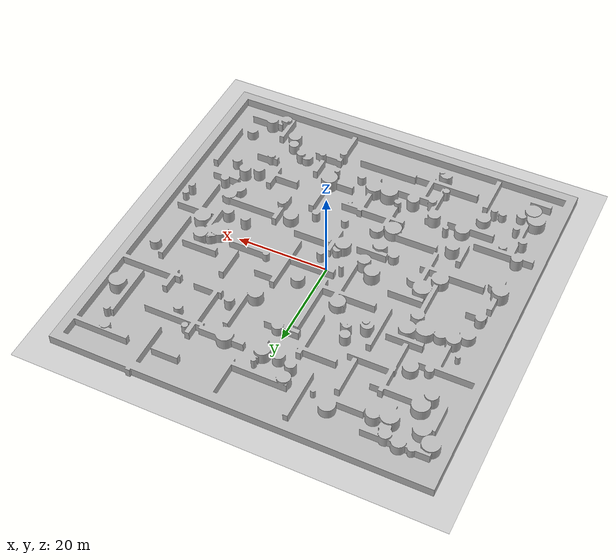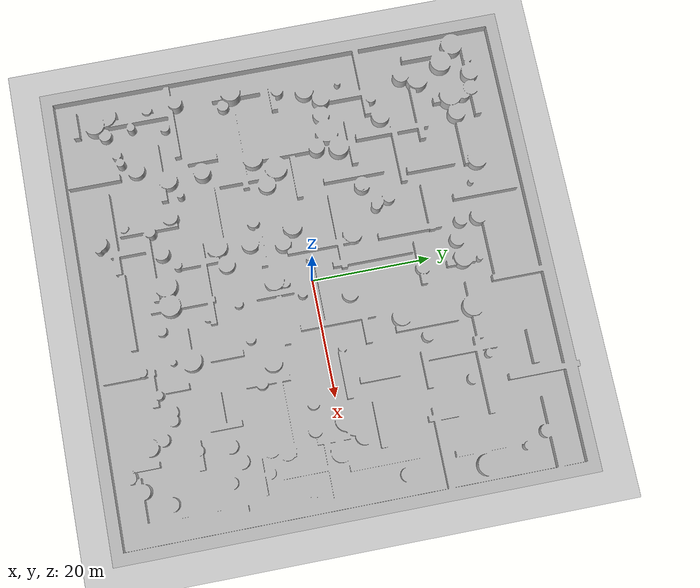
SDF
<?xml version="1.0"?>
<sdf version="1.7">
  <world name="default">

    <!-- 1) 太阳光设置 -->
    <light name="sun" type="directional">
      <cast_shadows>1</cast_shadows>
      <pose>0 0 10 0 0 0</pose>
      <diffuse>0.8 0.8 0.8 1</diffuse>
      <specular>0.2 0.2 0.2 1</specular>
      <attenuation>
        <range>1000</range>
        <constant>0.9</constant>
        <linear>0.01</linear>
        <quadratic>0.001</quadratic>
      </attenuation>
      <direction>-0.5 0.1 -0.9</direction>
    </light>

    <!-- 2) 插件示例（可选） -->
    <plugin name="ros_interface_plugin" filename="librotors_gazebo_ros_interface_plugin.so"/>

    <!-- 3) 地面: plane -->
    <model name="ground_plane">
      <static>true</static>
      <link name="link">
        <collision name="collision">
          <geometry>
            <plane>
              <normal>0 0 1</normal>
              <size>100 100</size>
            </plane>
          </geometry>
        </collision>
        <visual name="visual">
          <cast_shadows>false</cast_shadows>
          <geometry>
            <plane>
              <normal>0 0 1</normal>
              <size>100 100</size>
            </plane>
          </geometry>
          <material>
            <script>
              <uri>file://media/materials/scripts/gazebo.material</uri>
              <name>Gazebo/Grey</name>
            </script>
          </material>
        </visual>
      </link>
    </model>

    <model name="partition">
      <!-- 如果只是静态场景，设true -->
      <static>true</static>
      <!-- 在世界坐标中摆放位置, 如放在 x=10, y=5, z=0 上面 -->
      <pose>-40 -40 0 0 0 0</pose>
      <link name="link">
        <!-- 可视外观 -->
        <visual name="partition_visual">
          <geometry>
            <mesh>
                  <!-- 假设dae文件在 /home/username/models/my_mesh.dae -->
              <uri>file:///home/zhengkr/fael_ws/src/FAEL/fael_planner/exploration_manager/worlds/mesh_partition_forest.dae</uri>
            </mesh>
          </geometry>
        </visual>

        <!-- 碰撞形状, 可以与visual相同(高精度)或用简化网格(推荐) -->
        <collision name="partition_collision">
          <geometry>
            <mesh>
              <uri>file:///home/zhengkr/fael_ws/src/FAEL/fael_planner/exploration_manager/worlds/mesh_partition_forest.dae</uri>
            </mesh>
          </geometry>
        </collision>

      </link>
    </model>

    <!-- 5) 物理配置等: gravity, atmosphere, physics... -->
    <gravity>0 0 -9.8</gravity>
    <magnetic_field>6e-06 2.3e-05 -4.2e-05</magnetic_field>
    <atmosphere type="adiabatic"/>
    <physics name="default_physics" default="0" type="ode">
      <max_step_size>0.001</max_step_size>
      <real_time_factor>1</real_time_factor>
      <real_time_update_rate>1000</real_time_update_rate>
    </physics>
    <scene>
      <ambient>0.4 0.4 0.4 1</ambient>
      <background>0.7 0.7 0.7 1</background>
      <shadows>1</shadows>
    </scene>
    <spherical_coordinates>
      <surface_model>EARTH_WGS84</surface_model>
      <latitude_deg>0</latitude_deg>
      <longitude_deg>0</longitude_deg>
      <elevation>0</elevation>
      <heading_deg>0</heading_deg>
    </spherical_coordinates>

  </world>
</sdf>
